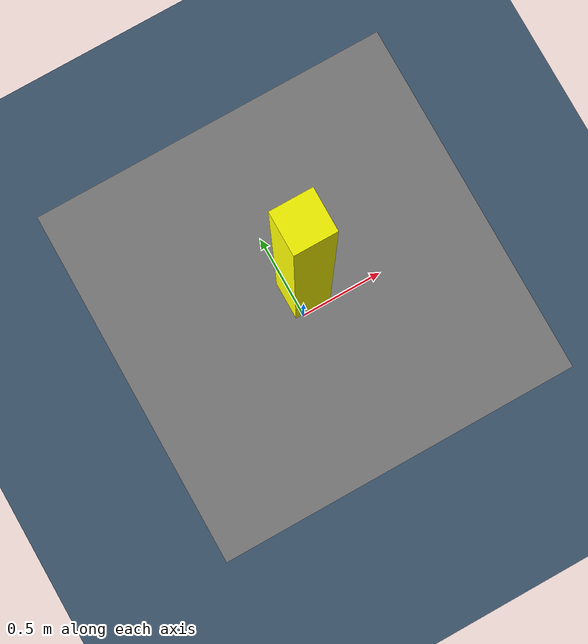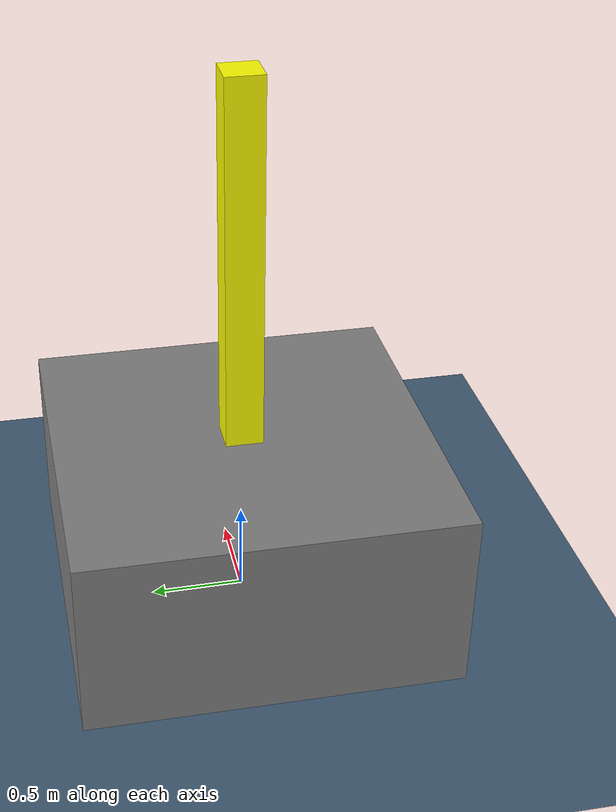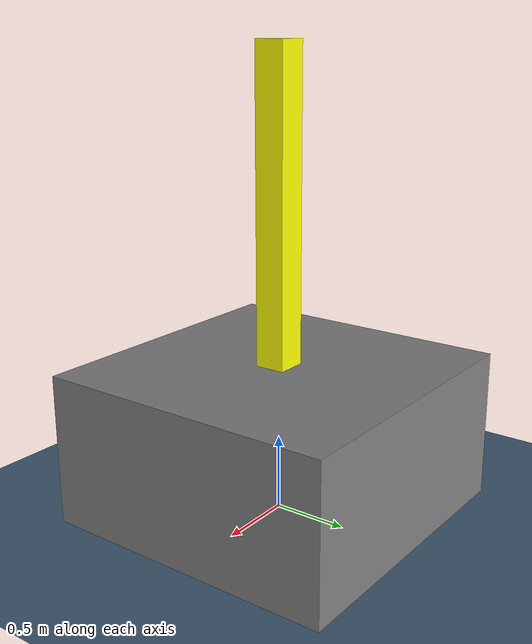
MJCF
<mujoco>
	<option gravity="0 0 -9.81" />
	<asset>
		<texture name="planetex" builtin="checker" width="1000" height="1000" rgb1="0.1 0.2 0.3" rgb2="0.4 0.5 0.6" type="2d"/>
		<material name="planemat" texture="planetex" texrepeat="5 5" texuniform="true" />
	</asset>
	<worldbody>
		<light pos="0 0 3" directional="true" />
		<geom type="plane" size="0 0 0.1" material="planemat" />
		<body pos="0 0 0.5">
			<joint name="cartJ" type='slide' axis="1 0 0" limited="true" range="-5 5"/>
			<geom type="box" size="1 1 0.5" rgba="0.5 0.5 0.5 1" mass="1"/>
			<body pos="0 0 0.5">
				<joint name="poleJ" type="hinge" axis="0 1 0" />
				<geom type="box" size="0.1 0.1 1" pos="0 0 1" rgba="1 1 0 1" mass="0.1" />
			</body>
		</body>
	</worldbody>
	<actuator>
		<motor joint="cartJ" gear="200" name="cartJ" />
	</actuator>
</mujoco>
